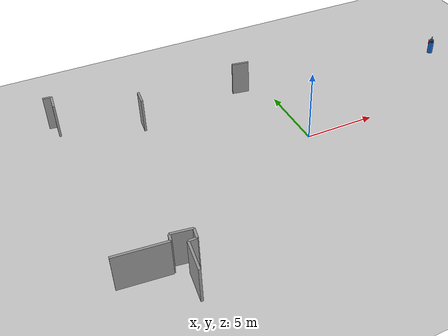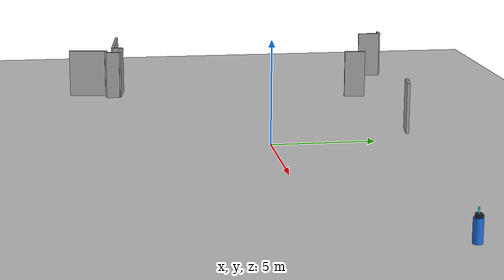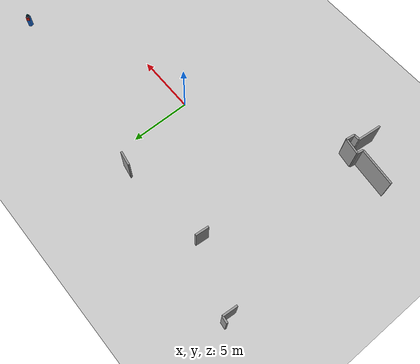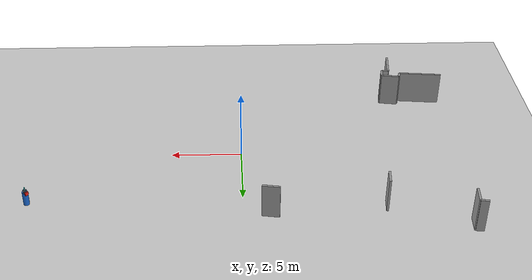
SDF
<sdf version="1.7">
 <world name="default">
  <plugin name="socnav_plugin" filename="libSocNavPlugin.so">
   <robot_name>robot</robot_name>
   <trajectory_file>/home/hunav_gz_classic_ws/SocNav3_trajectories/src3/000001012.json</trajectory_file>
   <human_slots>5</human_slots>
  </plugin>
  <light name="sun" type="directional">
   <pose>0 0 10 0 -0 0</pose>
   <diffuse>0.8 0.8 0.8 1</diffuse>
   <specular>0.2 0.2 0.2 1</specular>
   <attenuation>
    <range>1000</range>
    <constant>0.9</constant>
    <linear>0.01</linear>
    <quadratic>0.001</quadratic>
   </attenuation>
   <direction>-0.5 0.1 -0.9</direction>
   <spot><inner_angle>0</inner_angle><outer_angle>0</outer_angle><falloff>0</falloff></spot>
  </light>
  <model name="ground_plane">
   <static>1</static>
   <link name="link">
    <collision name="collision">
     <geometry><plane><normal>0 0 1</normal><size>100 100</size></plane></geometry>
     <surface><friction><ode><mu>100</mu><mu2>50</mu2></ode></friction></surface>
    </collision>
    <visual name="visual">
     <cast_shadows>0</cast_shadows>
     <geometry><plane><normal>0 0 1</normal><size>100 100</size></plane></geometry>
     <material>
      <script><uri>file://media/materials/scripts/kitchen.material</uri><name>Kitchen/CounterTop_H</name></script>
     </material>
    </visual>
   </link>
  </model>
  <gravity>0 0 -9.8</gravity>
  <magnetic_field>6e-06 2.3e-05 -4.2e-05</magnetic_field>
  <atmosphere type="adiabatic"/>
  <physics type="ode">
   <max_step_size>0.001</max_step_size>
   <real_time_factor>1</real_time_factor>
   <real_time_update_rate>1000</real_time_update_rate>
  </physics>
  <scene><ambient>0.4 0.4 0.4 1</ambient><background>0.7 0.7 0.7 1</background><shadows>1</shadows></scene>
  <audio><device>default</device></audio>
  <spherical_coordinates>
   <surface_model>EARTH_WGS84</surface_model>
   <latitude_deg>0</latitude_deg>
   <longitude_deg>0</longitude_deg>
   <elevation>0</elevation>
   <heading_deg>0</heading_deg>
  </spherical_coordinates>
  <model name="robot">
   <pose>14.558850891733531 5.30402069942939 0.5 0 0 2.432730025935287</pose>
   <link name="link">
    <collision name="collision">
     <geometry><cylinder><radius>0.2</radius><length>1.0</length></cylinder></geometry>
    </collision>
    <visual name="visual">
     <geometry><cylinder><radius>0.2</radius><length>1.0</length></cylinder></geometry>
     <material><ambient>0.1 0.4 0.8 1</ambient><diffuse>0.1 0.4 0.8 1</diffuse></material>
    </visual>
    <visual name="robot_top">
     <pose>0 0 0.58 0 0 0</pose>
     <geometry><cylinder><radius>0.144</radius><length>0.16</length></cylinder></geometry>
     <material><ambient>0.04 0.08 0.12 1</ambient><diffuse>0.04 0.08 0.12 1</diffuse></material>
    </visual>
    <visual name="robot_front">
     <pose>0.168 0 0.44 0 0 0</pose>
     <geometry><box><size>0.096 0.256 0.24</size></box></geometry>
     <material><ambient>0.9 0.12 0.08 1</ambient><diffuse>0.9 0.12 0.08 1</diffuse></material>
    </visual>
    <visual name="robot_sensor">
     <pose>0 0 0.78 0 0 0</pose>
     <geometry><cylinder><radius>0.028000000000000004</radius><length>0.24</length></cylinder></geometry>
     <material><ambient>0.1 0.9 0.9 1</ambient><diffuse>0.1 0.9 0.9 1</diffuse></material>
    </visual>
   </link>
  </model>
  <model name="simple_world_test">
   <link name="Wall_0">
    <collision name="Wall_0_Collision">
     <geometry><box><size>3.175013397793233 0.15 2.5</size></box></geometry>
     <pose>0 0 1.25 0 -0 0</pose>
    </collision>
    <visual name="Wall_0_Visual">
     <pose>0 0 1.25 0 -0 0</pose>
     <geometry><box><size>3.175013397793233 0.15 2.5</size></box></geometry>
     <material>
      <script><uri>file://media/materials/scripts/gazebo.material</uri><name>Gazebo/Grey</name></script>
      <ambient>1 1 1 1</ambient>
     </material>
     <meta><layer>0</layer></meta>
    </visual>
    <pose>-13.979938171703004 -6.810410210073856 0 0 -0 -0.10409993810959914</pose>
   </link>
   <link name="Wall_1">
    <collision name="Wall_1_Collision">
     <geometry><box><size>0.5099019513592784 0.15 2.5</size></box></geometry>
     <pose>0 0 1.25 0 -0 0</pose>
    </collision>
    <visual name="Wall_1_Visual">
     <pose>0 0 1.25 0 -0 0</pose>
     <geometry><box><size>0.5099019513592784 0.15 2.5</size></box></geometry>
     <material>
      <script><uri>file://media/materials/scripts/gazebo.material</uri><name>Gazebo/Grey</name></script>
      <ambient>1 1 1 1</ambient>
     </material>
     <meta><layer>0</layer></meta>
    </visual>
    <pose>-12.35102545167248 -6.725371240524806 0 0 -0 1.3734007669450166</pose>
   </link>
   <link name="Wall_2">
    <collision name="Wall_2_Collision">
     <geometry><box><size>1.3152946437965913 0.15 2.5</size></box></geometry>
     <pose>0 0 1.25 0 -0 0</pose>
    </collision>
    <visual name="Wall_2_Visual">
     <pose>0 0 1.25 0 -0 0</pose>
     <geometry><box><size>1.3152946437965913 0.15 2.5</size></box></geometry>
     <material>
      <script><uri>file://media/materials/scripts/gazebo.material</uri><name>Gazebo/Grey</name></script>
      <ambient>1 1 1 1</ambient>
     </material>
     <meta><layer>0</layer></meta>
    </visual>
    <pose>-11.65102545167248 -6.575371240524806 0 0 -0 -0.1526493283952652</pose>
   </link>
   <link name="Wall_3">
    <collision name="Wall_3_Collision">
     <geometry><box><size>0.7071067811865479 0.15 2.5</size></box></geometry>
     <pose>0 0 1.25 0 -0 0</pose>
    </collision>
    <visual name="Wall_3_Visual">
     <pose>0 0 1.25 0 -0 0</pose>
     <geometry><box><size>0.7071067811865479 0.15 2.5</size></box></geometry>
     <material>
      <script><uri>file://media/materials/scripts/gazebo.material</uri><name>Gazebo/Grey</name></script>
      <ambient>1 1 1 1</ambient>
     </material>
     <meta><layer>0</layer></meta>
    </visual>
    <pose>-11.05102545167248 -7.025371240524807 0 0 -0 -1.7126933813990626</pose>
   </link>
   <link name="Wall_4">
    <collision name="Wall_4_Collision">
     <geometry><box><size>0.5 0.15 2.5</size></box></geometry>
     <pose>0 0 1.25 0 -0 0</pose>
    </collision>
    <visual name="Wall_4_Visual">
     <pose>0 0 1.25 0 -0 0</pose>
     <geometry><box><size>0.5 0.15 2.5</size></box></geometry>
     <material>
      <script><uri>file://media/materials/scripts/gazebo.material</uri><name>Gazebo/Grey</name></script>
      <ambient>1 1 1 1</ambient>
     </material>
     <meta><layer>0</layer></meta>
    </visual>
    <pose>-11.35102545167248 -7.375371240524807 0 0 -0 3.141592653589793</pose>
   </link>
   <link name="Wall_5">
    <collision name="Wall_5_Collision">
     <geometry><box><size>2.009975124224178 0.15 2.5</size></box></geometry>
     <pose>0 0 1.25 0 -0 0</pose>
    </collision>
    <visual name="Wall_5_Visual">
     <pose>0 0 1.25 0 -0 0</pose>
     <geometry><box><size>2.009975124224178 0.15 2.5</size></box></geometry>
     <material>
      <script><uri>file://media/materials/scripts/gazebo.material</uri><name>Gazebo/Grey</name></script>
      <ambient>1 1 1 1</ambient>
     </material>
     <meta><layer>0</layer></meta>
    </visual>
    <pose>-11.70102545167248 -8.375371240524807 0 0 -0 -1.6704649792860582</pose>
   </link>
   <link name="Wall_6">
    <collision name="Wall_6_Collision">
     <geometry><box><size>0.5621665595412829 0.15 2.5</size></box></geometry>
     <pose>0 0 1.25 0 -0 0</pose>
    </collision>
    <visual name="Wall_6_Visual">
     <pose>0 0 1.25 0 -0 0</pose>
     <geometry><box><size>0.5621665595412829 0.15 2.5</size></box></geometry>
     <material>
      <script><uri>file://media/materials/scripts/gazebo.material</uri><name>Gazebo/Grey</name></script>
      <ambient>1 1 1 1</ambient>
     </material>
     <meta><layer>0</layer></meta>
    </visual>
    <pose>-15.279938171703005 8.859492849479008 0 0 -0 -0.12435499454676144</pose>
   </link>
   <link name="Wall_7">
    <collision name="Wall_7_Collision">
     <geometry><box><size>1.204159457879229 0.15 2.5</size></box></geometry>
     <pose>0 0 1.25 0 -0 0</pose>
    </collision>
    <visual name="Wall_7_Visual">
     <pose>0 0 1.25 0 -0 0</pose>
     <geometry><box><size>1.204159457879229 0.15 2.5</size></box></geometry>
     <material>
      <script><uri>file://media/materials/scripts/gazebo.material</uri><name>Gazebo/Grey</name></script>
      <ambient>1 1 1 1</ambient>
     </material>
     <meta><layer>0</layer></meta>
    </visual>
    <pose>-15.05102545167248 8.224628759475193 0 0 -0 -1.6539375586833391</pose>
   </link>
   <link name="Wall_8">
    <collision name="Wall_8_Collision">
     <geometry><box><size>1.1045361017187258 0.15 2.5</size></box></geometry>
     <pose>0 0 1.25 0 -0 0</pose>
    </collision>
    <visual name="Wall_8_Visual">
     <pose>0 0 1.25 0 -0 0</pose>
     <geometry><box><size>1.1045361017187258 0.15 2.5</size></box></geometry>
     <material>
      <script><uri>file://media/materials/scripts/gazebo.material</uri><name>Gazebo/Grey</name></script>
      <ambient>1 1 1 1</ambient>
     </material>
     <meta><layer>0</layer></meta>
    </visual>
    <pose>-9.651025451672481 6.174628759475193 0 0 -0 -1.6614562139956415</pose>
   </link>
   <link name="Wall_9">
    <collision name="Wall_9_Collision">
     <geometry><box><size>1.2165525060596432 0.15 2.5</size></box></geometry>
     <pose>0 0 1.25 0 -0 0</pose>
    </collision>
    <visual name="Wall_9_Visual">
     <pose>0 0 1.25 0 -0 0</pose>
     <geometry><box><size>1.2165525060596432 0.15 2.5</size></box></geometry>
     <material>
      <script><uri>file://media/materials/scripts/gazebo.material</uri><name>Gazebo/Grey</name></script>
      <ambient>1 1 1 1</ambient>
     </material>
     <meta><layer>0</layer></meta>
    </visual>
    <pose>-1.80102545167248 7.024628759475194 0 0 -0 -0.16514867741462635</pose>
   </link>
   <static>1</static>
  </model>
 </world>
</sdf>
